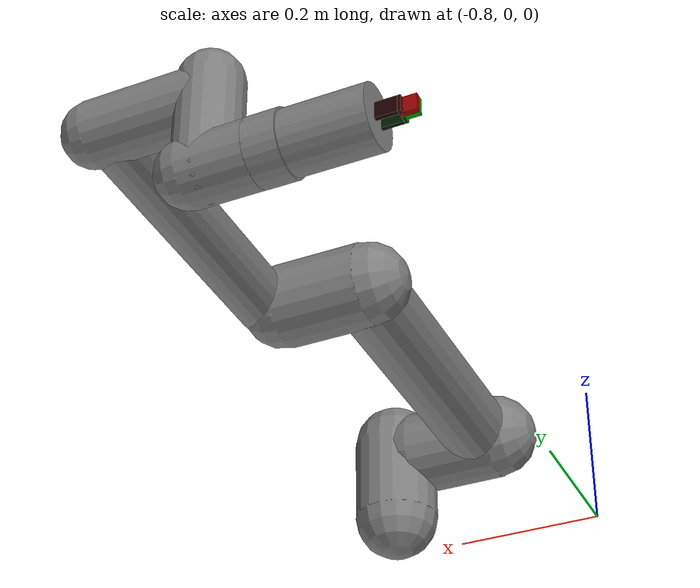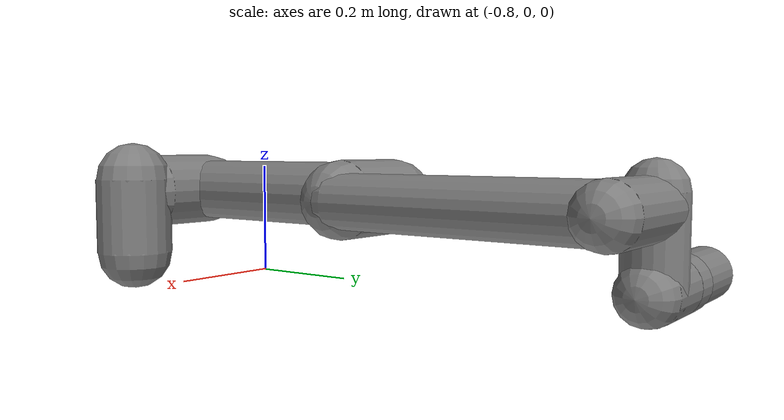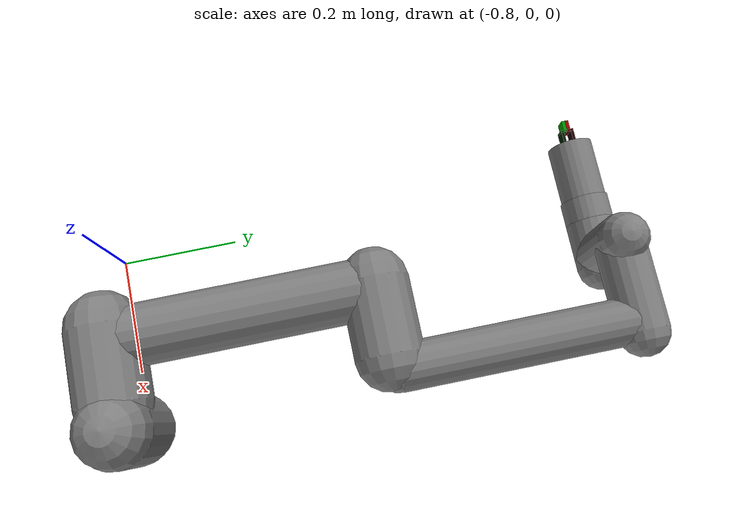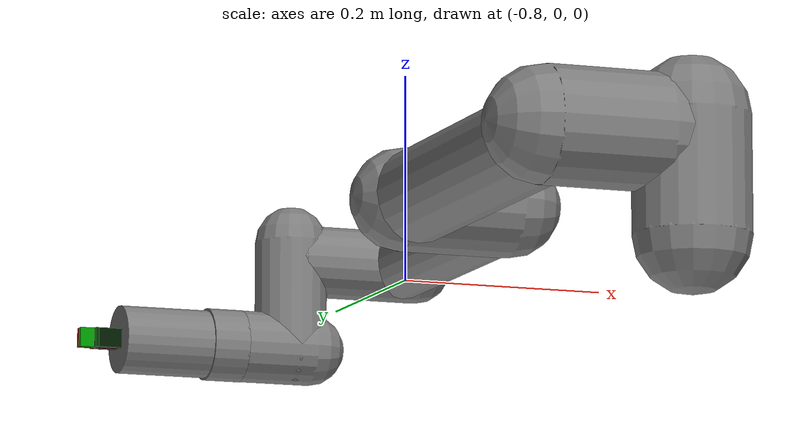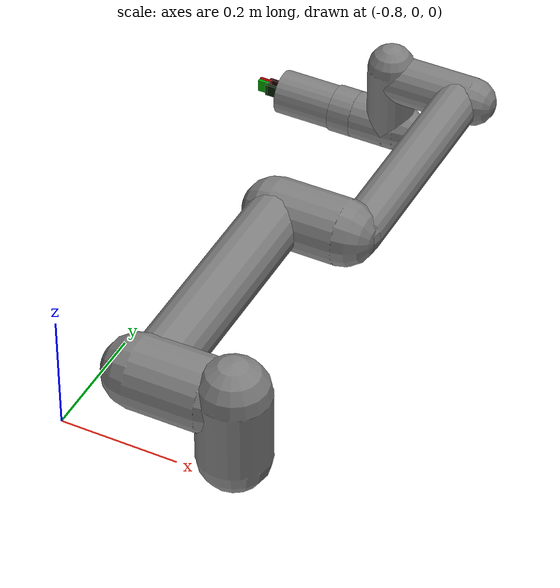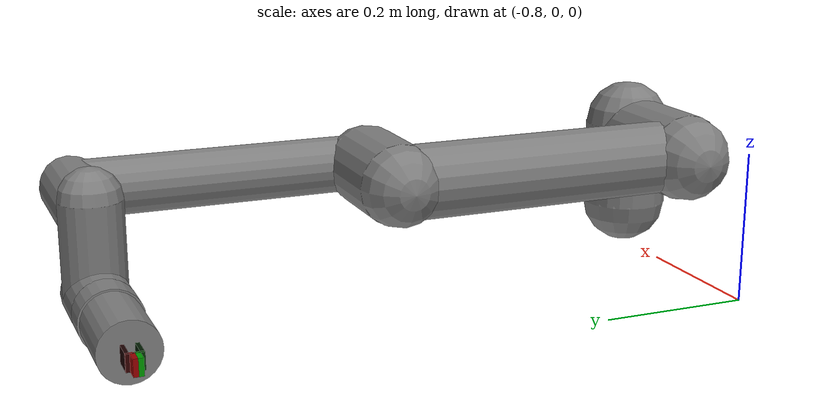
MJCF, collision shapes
<mujoco model="ur5e_hande_v2">
  <compiler angle="radian" meshdir="assets" autolimits="true"/>

  <option integrator="implicitfast" noslip_iterations="0" cone="elliptic" impratio="4" timestep="1e-5">
  </option>

  <asset>
    <material class="ur5e" name="black" rgba="0.033 0.033 0.033 1"/>
    <material class="ur5e" name="jointgray" rgba="0.278 0.278 0.278 1"/>
    <material class="ur5e" name="linkgray" rgba="0.82 0.82 0.82 1"/>
    <material class="ur5e" name="urblue" rgba="0.49 0.678 0.8 1"/>
    <mesh file="base_0.obj"/><mesh file="base_1.obj"/>
    <mesh file="shoulder_0.obj"/><mesh file="shoulder_1.obj"/><mesh file="shoulder_2.obj"/>
    <mesh file="upperarm_0.obj"/><mesh file="upperarm_1.obj"/><mesh file="upperarm_2.obj"/><mesh file="upperarm_3.obj"/>
    <mesh file="forearm_0.obj"/><mesh file="forearm_1.obj"/><mesh file="forearm_2.obj"/><mesh file="forearm_3.obj"/>
    <mesh file="wrist1_0.obj"/><mesh file="wrist1_1.obj"/><mesh file="wrist1_2.obj"/>
    <mesh file="wrist2_0.obj"/><mesh file="wrist2_1.obj"/><mesh file="wrist2_2.obj"/>
    <mesh file="wrist3.obj"/>
    <mesh name="hande" file="hande.stl"/>
    <mesh name="coupler" file="coupler.stl"/>
    <mesh name="left_finger"  file="finger_2.stl"/>
    <mesh name="right_finger" file="finger_1.stl"/>
  </asset>

  <default>
    <default class="ur5e">
        <material specular="0.5" shininess="0.25"/>
        <joint axis="0 1 0" range="-6.28319 6.28319" armature="0.1"/>
        <general gaintype="fixed" biastype="affine" ctrlrange="-6.2831 6.2831" gainprm="2000" biasprm="0 -2000 -400" forcerange="-150 150"/>

        <default class="size3">
          <general gainprm="4500" biasprm="0 -4500 -450" forcerange="-87 87"/>
          <default class="size3_limited">
            <joint range="-3.1415 3.1415"/>
            <general ctrlrange="-3.1415 3.1415" gainprm="3500" biasprm="0 -3500 -350" forcerange="-87 87"/>
          </default>
        </default>

        <default class="size1">
          <general gainprm="2000" biasprm="0 -2000 -200" forcerange="-28 28"/>
        </default>

        <default class="visual">
          <geom type="mesh" contype="0" conaffinity="0" group="2"/>
        </default>

        <default class="collision">
          <geom type="capsule" group="3"/>
          <default class="eef_collision"><geom type="cylinder"/></default>
        </default>

        <default class="object_collision">
          <geom type="mesh" group="4" condim="6" friction="10 5e-1 1e-4"/>
        </default>

        <site size="0.001" rgba="0.5 0.5 0.5 0.3" group="4"/>

        <default class="hande_visual">
            <geom type="mesh" contype="0" conaffinity="0" group="2" rgba="0.6 0.6 0.6 1"/>

            <default class="finger_visual">
                <geom type="mesh" contype="0" conaffinity="0" group="2" rgba="0.6 0.6 0.6 1" pos="-0.025 0 0"/>

                <default class="fingertip_LR_visual_marker">
                  <geom type="box" size="0.0105 0.003 0.010" pos="0.003 0 0.0365" quat="1 0 0 1" group="5"/>
                </default>

            </default>
        </default>

        <default class="hande_collision">
            <geom group="3" condim="6" friction="10 5e-1 1e-4"/>
            <default class="hande_base">
                <geom type="cylinder" size="0.0375 0.05" pos="0 0 0.05"/>
            </default>

            <default class="finger">
                <joint axis="1 0 0" type="slide" range="0 0.025"/>
            </default>

            <default class="finger_base">
                <geom type="box" size="0.0105 0.0024 0.01325" pos="0.0084 0 0.01325" quat="1 0 0 1"/>
            </default>
            <default class="finger_connect">
                <geom type="box" size="0.0105 0.0054 0.002" pos="0.0054 0 0.0285" quat="1 0 0 1"/>
            </default>
            <default class="fingertip">
                <geom type="box" size="0.0105 0.003 0.010" pos="0.003 0 0.0365" quat="1 0 0 1"/>
            </default>
        </default>

      <default class="hande_site">
        <default class="canonical_fingertip_surafece_site">
          <site type="box" size="0.0105 0.003 0.010" rgba="1 1 0 0.5" pos="0 0 0.0365" quat="1 0 0 -1"/>
        </default>

      </default>

    </default>
  </default>

  <worldbody>
    <light name="spotlight" mode="targetbodycom" target="wrist_2_link" pos="0 -1 2"/>

    <body name="base" pos="-0.5 0 0" childclass="ur5e" quat="1 0 0 1">
      <inertial mass="4.0" pos="0 0 0" diaginertia="0.00443333156 0.00443333156 0.0072"/>
      <geom mesh="base_0" material="black" class="visual"/>
      <geom mesh="base_1" material="jointgray" class="visual"/>
      <body name="shoulder_link" pos="0 0 0.163">
        <inertial mass="3.7" pos="0 0 0" diaginertia="0.0102675 0.0102675 0.00666"/>
        <joint name="shoulder_pan_joint" class="size3" axis="0 0 1"/>
        <geom mesh="shoulder_0" material="urblue" class="visual"/>
        <geom mesh="shoulder_1" material="black" class="visual"/>
        <geom mesh="shoulder_2" material="jointgray" class="visual"/>
        <geom class="collision" size="0.06 0.06" pos="0 0 -0.04"/>
        <body name="upper_arm_link" pos="0 0.138 0" quat="1 0 1 0">
          <inertial mass="8.393" pos="0 0 0.2125" diaginertia="0.133886 0.133886 0.0151074"/>
          <joint name="shoulder_lift_joint" class="size3"/>
          <geom mesh="upperarm_0" material="linkgray" class="visual"/>
          <geom mesh="upperarm_1" material="black" class="visual"/>
          <geom mesh="upperarm_2" material="jointgray" class="visual"/>
          <geom mesh="upperarm_3" material="urblue" class="visual"/>
          <geom class="collision" pos="0 -0.04 0" quat="1 1 0 0" size="0.06 0.06"/>
          <geom class="collision" size="0.05 0.2" pos="0 0 0.2"/>
          <body name="forearm_link" pos="0 -0.131 0.425">
            <inertial mass="2.275" pos="0 0 0.196" diaginertia="0.0311796 0.0311796 0.004095"/>
            <joint name="elbow_joint" class="size3_limited"/>
            <geom mesh="forearm_0" material="urblue" class="visual"/>
            <geom mesh="forearm_1" material="linkgray" class="visual"/>
            <geom mesh="forearm_2" material="black" class="visual"/>
            <geom mesh="forearm_3" material="jointgray" class="visual"/>
            <geom class="collision" pos="0 0.08 0" quat="1 1 0 0" size="0.055 0.06"/>
            <geom class="collision" size="0.038 0.19" pos="0 0 0.2"/>
            <body name="wrist_1_link" pos="0 0 0.392" quat="1 0 1 0">
              <inertial mass="1.219" pos="0 0.127 0" diaginertia="0.0025599 0.0025599 0.0021942"/>
              <joint name="wrist_1_joint" class="size1"/>
              <geom mesh="wrist1_0" material="black" class="visual"/>
              <geom mesh="wrist1_1" material="urblue" class="visual"/>
              <geom mesh="wrist1_2" material="jointgray" class="visual"/>
              <geom class="collision" pos="0 0.05 0" quat="1 1 0 0" size="0.04 0.07"/>
              <body name="wrist_2_link" pos="0 0.127 0">
                <inertial mass="1.219" pos="0 0 0.1" diaginertia="0.0025599 0.0025599 0.0021942"/>
                <joint name="wrist_2_joint" axis="0 0 1" class="size1"/>
                <geom mesh="wrist2_0" material="black" class="visual"/>
                <geom mesh="wrist2_1" material="urblue" class="visual"/>
                <geom mesh="wrist2_2" material="jointgray" class="visual"/>
                <geom class="collision" size="0.04 0.06" pos="0 0 0.04"/>
                <geom class="collision" pos="0 0.02 0.1" quat="1 1 0 0" size="0.04 0.04"/>
                <body name="wrist_3_link" pos="0 0 0.1">
                  <inertial mass="0.1889" pos="0 0.0771683 0" quat="1 0 0 1" diaginertia="0.000132134 9.90863e-05 9.90863e-05"/>
                  <joint name="wrist_3_joint" class="size1"/>
                  <geom material="linkgray" mesh="wrist3" class="visual"/>
                  <geom class="eef_collision" pos="0 0.08 0" quat="1 1 0 0" size="0.04 0.02"/>

                  <body name="hand" pos="0 0.1 0" quat="0.7071 -0.7071 -0.0000 -0.0000">
                      <geom class="hande_visual" mesh="coupler" rgba="0.1 0.1 0.1 1"/>
                      <geom class="hande_visual" mesh="hande"   rgba="0.1 0.1 0.1 1"/>
                      <geom class="hande_base"/>

                       <!-- canonical gripper surface -->
                      <body name="canonical_fingertip_surafece" pos="0 0 0.099">
                        <site class="canonical_fingertip_surafece_site" name="canonical_fingertip_surafece"/>
                      </body>

                      <body name="left_finger" pos="0 0 0.099">
                          <inertial pos="0.02262 -0.00759 0.00738" quat="0.871952 0.0369732 -0.211073 0.440205" mass="0.03804" diaginertia="1.22763e-05 1.22763e-05 1.22763e-05"/>
                          <joint name="finger_joint1" class="finger"/>
                          <!-- collision -->
                          <geom class="finger_base"    name="finger_base_left"       rgba="0 0.1 0 1"/>
                          <geom class="finger_connect" name="finger_connect_left"    rgba="0 0.2 0 1"/>
                          <geom class="fingertip"      name="left_fingertip_center"  rgba="0 0.6 0 1"/>
                          <!-- visual -->
                          <geom class="finger_visual" mesh="left_finger" quat="0 0 0 1"/>
                          <geom class="fingertip_LR_visual_marker" name="fingertip_left_visual_marker"  rgba="0 0.6 0 1"/>
                      </body>

                      <body name="right_finger" pos="0 0 0.099" quat="0 0 0 1">
                          <inertial pos="-0.02262 0.00759 0.00738" quat="0.871952 -0.0369732 0.211073 0.440205" mass="0.03804" diaginertia="1.22763e-05 1.22763e-05 1.22763e-05"/>
                          <joint name="finger_joint2" class="finger"/>
                          <!-- collision -->
                          <geom class="finger_base"    name="finger_base_right"      rgba="0.1 0 0 1"/>
                          <geom class="finger_connect" name="finger_connect_right"   rgba="0.2 0 0 1"/>
                          <geom class="fingertip"      name="right_fingertip_center" rgba="0.6 0 0 1"/>
                          <!-- visual -->
                          <geom class="finger_visual"   mesh="right_finger" />
                          <geom class="fingertip_LR_visual_marker" name="fingertip_right_visual_marker"  rgba="0.6 0 0 1"/>
                      </body>
                  </body>

                </body>
              </body>
            </body>
          </body>
        </body>
      </body>
    </body>
  </worldbody>

  <contact>
    <exclude body1="hand" body2="left_finger"/>
    <exclude body1="hand" body2="right_finger"/>
  </contact>

  <tendon>
    <fixed name="split">
      <joint joint="finger_joint1" coef="0.5"/>
      <joint joint="finger_joint2" coef="0.5"/>
    </fixed>
  </tendon>

  <equality>
    <joint joint1="finger_joint1" joint2="finger_joint2" solimp="0.95 0.99 0.001" solref="0.005 1"/>
  </equality>

  <actuator>
    <general class="size3"         name="shoulder_pan"  joint="shoulder_pan_joint"/>
    <general class="size3"         name="shoulder_lift" joint="shoulder_lift_joint"/>
    <general class="size3_limited" name="elbow"         joint="elbow_joint"/>
    <general class="size1"         name="wrist_1"       joint="wrist_1_joint"/>
    <general class="size1"         name="wrist_2"       joint="wrist_2_joint"/>
    <general class="size1"         name="wrist_3"       joint="wrist_3_joint"/>
    <!-- Remap original ctrlrange (0, 0.025) to (0, 255): 0.04 * 100 / 255 = 0.01568627451 -->
    <general class="ur5e" name="actuator_finger" tendon="split" forcerange="-100 100" ctrlrange="0 0.025"
      gainprm="100 0 0" biasprm="0 -100 -10"/>
  </actuator>

  <keyframe>
    <key name="home" qpos="-1.5708 -1.5708 1.5708 -1.5708 -1.5708 0     0.025 0.025   0 0 0.196   1 0 0 0" ctrl="-1.5708 -1.5708 1.5708 -1.5708 -1.5708 0    0.025"/>
  </keyframe>
</mujoco>
